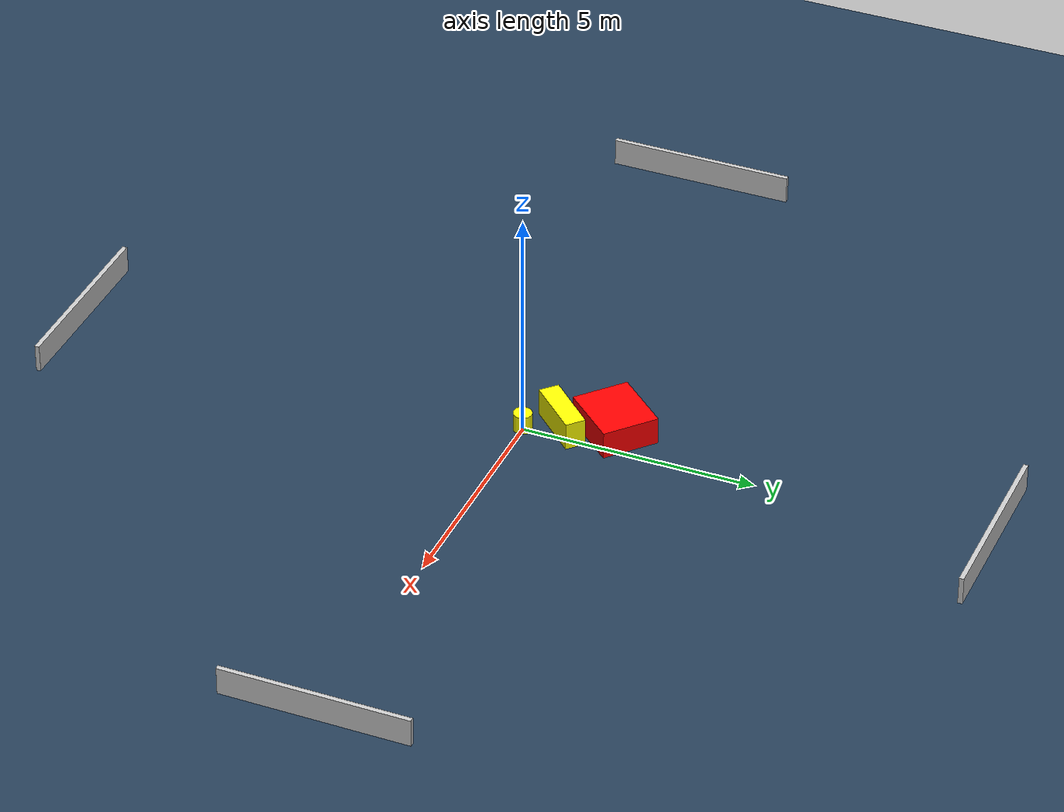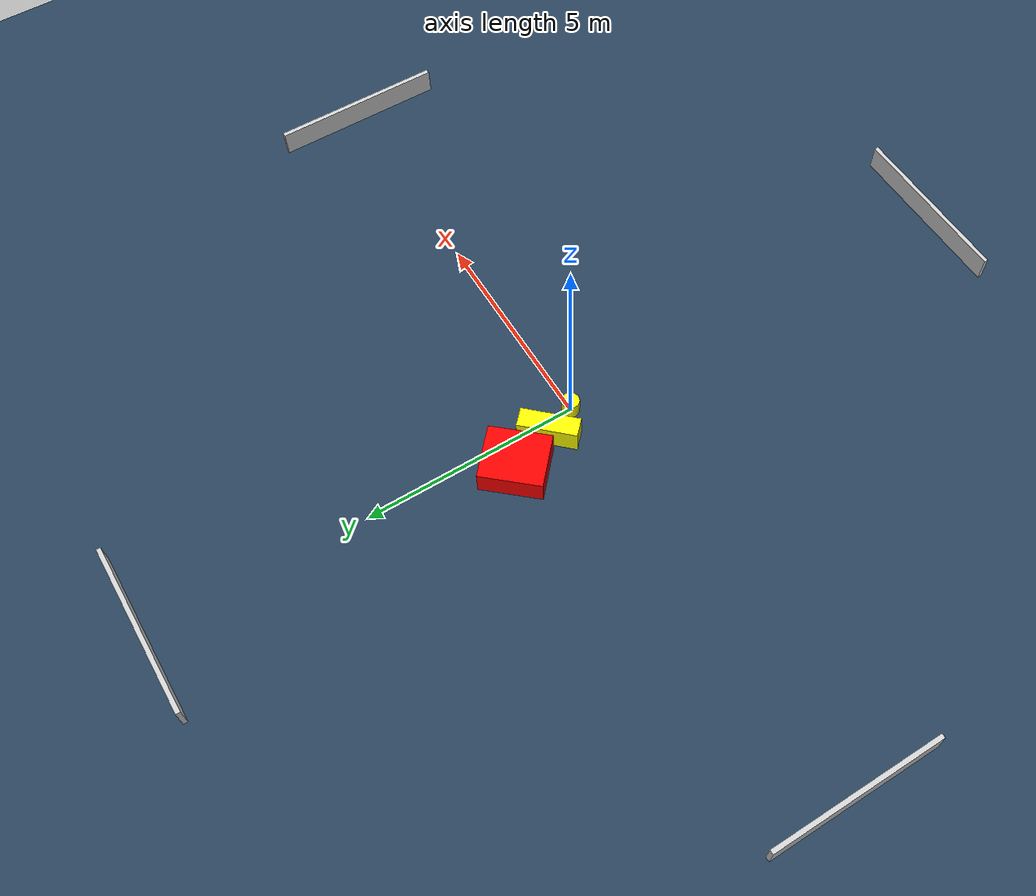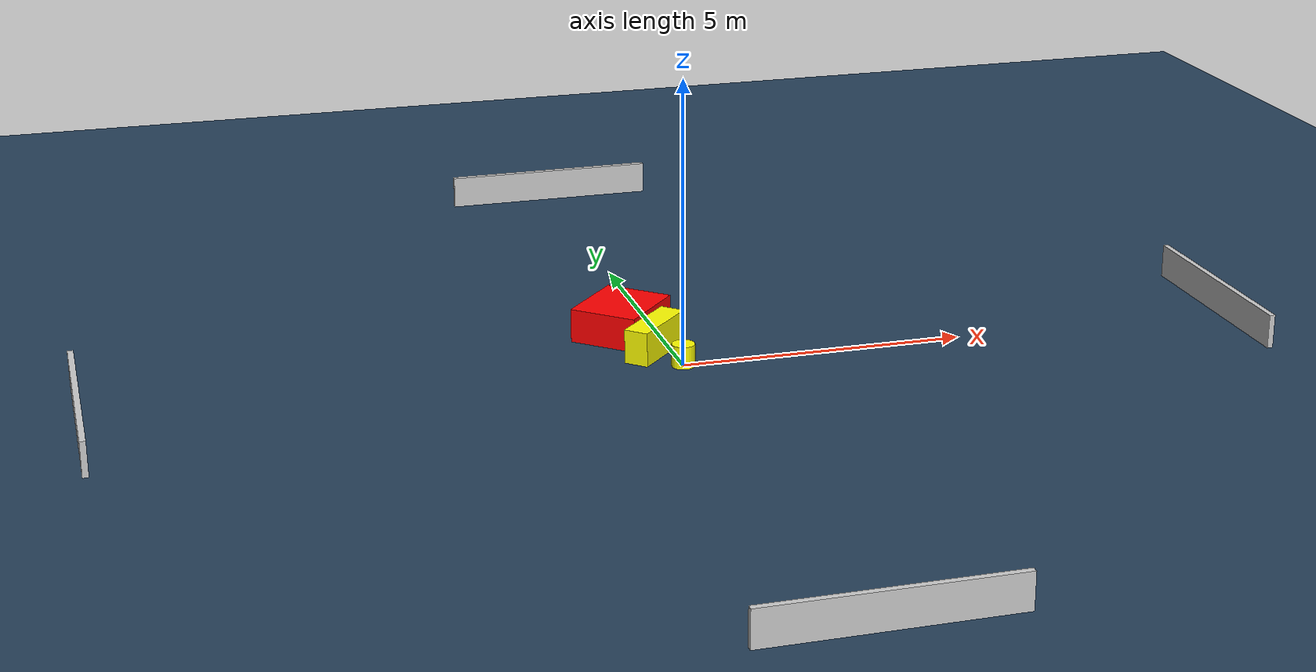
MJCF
<?xml version="1.0" ?>
<mujoco model="generated_environment">
  <option timestep="0.01" integrator="RK4" cone="elliptic"/>
  <default>
    <geom density="1"/>
  </default>
  <asset>
    <texture builtin="gradient" height="3072" name="skybox" rgb1="0.3 0.5 0.7" rgb2="0 0 0" type="skybox" width="512"/>
    <texture builtin="checker" height="300" name="groundplane" rgb1="0.2 0.3 0.4" rgb2="0.1 0.2 0.3" type="2d" width="300"/>
    <material name="groundplane" reflectance="0.2" texrepeat="5 5" texture="groundplane"/>
  </asset>
  <worldbody>
    <light dir="0 0 -1" directional="true" pos="0 0 1.5"/>
    <geom condim="3" friction="0.5 0.005 0.001" material="groundplane" name="floor" pos="0 0 0" size="0 0 0.05" type="plane"/>
    <body name="walls">
      <geom name="wall_1" condim="4" pos="-10.0 0.0 0.3" rgba="0.800000011920929 0.800000011920929 0.800000011920929 1.0" size="0.05 2.0 0.3" type="box"/>
      <geom name="wall_2" condim="4" pos="10.0 0.0 0.3" rgba="0.800000011920929 0.800000011920929 0.800000011920929 1.0" size="0.05 2.0 0.3" type="box"/>
      <geom name="wall_3" condim="4" pos="0.0 -10.0 0.3" rgba="0.800000011920929 0.800000011920929 0.800000011920929 1.0" size="2.0 0.05 0.3" type="box"/>
      <geom name="wall_4" condim="4" pos="0.0 10.0 0.3" rgba="0.800000011920929 0.800000011920929 0.800000011920929 1.0" size="2.0 0.05 0.3" type="box"/>
    </body>
    <body name="robot">
      <joint name="joint_x" type="slide" pos="0 0 0" axis="1 0 0"/>
      <joint name="joint_y" type="slide" pos="0 0 0" axis="0 1 0"/>
      <geom name="robot" type="cylinder" pos="0.0 0.0 0.2" size="0.2 0.2 0.0" mass="5.0" friction="1.0 0.005 0.0001" condim="4" rgba="1.0 1.0 0.0 1.0"/>
    </body>
    <body name="obstacle_1_movable">
      <geom name="obstacle_1_movable" condim="4" pos="-0.30354003247404165 0.7357586161290102 0.3" euler="0 0 136.40304585151603" friction="0.0 0.005 0.001" rgba="1.0 1.0 0.0 1.0" size="0.21886484712808205 0.668519630468549 0.3" type="box" mass="0.1"/>
      <joint type="free"/>
    </body>
    <body name="obstacle_2_static">
      <geom name="obstacle_2_static" condim="4" pos="-0.6272843464667992 1.7671601252206672 0.3" euler="0 0 48.227158533099846" friction="0.0 0.005 0.001" rgba="1.0 0.0 0.0 1.0" size="0.7079199369087734 0.6147874035416232 0.3" type="box"/>
    </body>
  </worldbody>
  <actuator>
    <motor name="actuator_x" joint="joint_x" gear="1" ctrlrange="-1 1"/>
    <motor name="actuator_y" joint="joint_y" gear="1" ctrlrange="-1 1"/>
  </actuator>
</mujoco>
